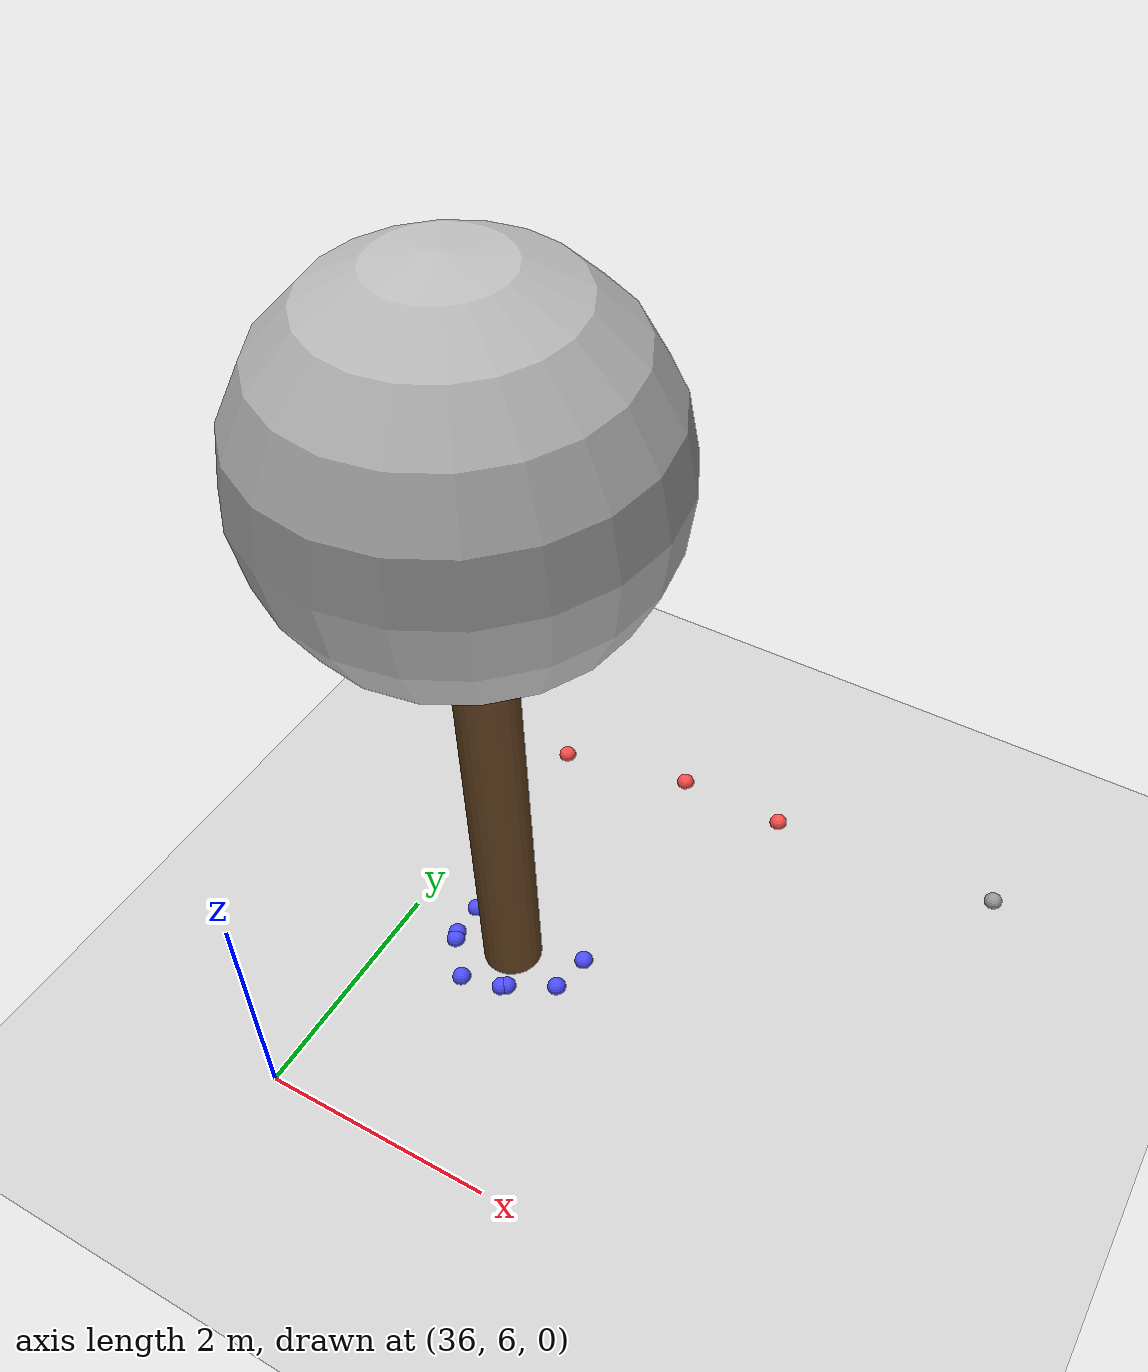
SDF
<sdf version="1.7">
 <world name="default">
  <model name="ground_plane">
   <static>1</static>
   <link name="link">
    <collision name="collision">
     <geometry><plane><normal>0 0 1</normal><size>100 100</size></plane></geometry>
     <surface>
      <contact><collide_bitmask>65535</collide_bitmask></contact>
      <friction><ode><mu>100</mu><mu2>50</mu2></ode></friction>
     </surface>
    </collision>
    <visual name="visual">
     <cast_shadows>0</cast_shadows>
     <geometry><plane><normal>0 0 1</normal><size>100 100</size></plane></geometry>
     <material>
      <script><uri>file://media/materials/scripts/gazebo.material</uri><name>Gazebo/Grey</name></script>
     </material>
    </visual>
   </link>
  </model>
  <model name="tree_simple_76">
   <static>1</static>
   <link name="link">
    <pose>0 0 0.1 0 -0 0</pose>
    <inertial>
     <mass>666</mass>
     <inertia>
      <ixx>0.0861167</ixx>
      <ixy>0</ixy>
      <ixz>0</ixz>
      <iyy>0.0861167</iyy>
      <iyz>0</iyz>
      <izz>0.0861167</izz>
     </inertia>
    </inertial>
    <collision name="collision_trunk">
     <pose>0 0 2 0 -0 0</pose>
     <geometry><cylinder><radius>0.25</radius><length>4</length></cylinder></geometry>
     <surface>
      <contact>
       <poissons_ratio>0.347</poissons_ratio>
       <elastic_modulus>8.8e+09</elastic_modulus>
       <ode><kp>100000</kp><kd>100</kd><max_vel>100</max_vel><min_depth>0.001</min_depth></ode>
      </contact>
      <friction>
       <torsional>
        <coefficient>1</coefficient>
        <use_patch_radius>0</use_patch_radius>
        <surface_radius>0.01</surface_radius>
       </torsional>
      </friction>
     </surface>
    </collision>
    <collision name="collision_treetop">
     <pose>0 0 5.2 0 -0 0</pose>
     <geometry><sphere><radius>1.5</radius></sphere></geometry>
     <surface>
      <contact>
       <poissons_ratio>0.347</poissons_ratio>
       <elastic_modulus>8.8e+09</elastic_modulus>
       <ode><kp>100000</kp><kd>100</kd><max_vel>100</max_vel><min_depth>0.001</min_depth></ode>
      </contact>
      <friction>
       <torsional>
        <coefficient>1</coefficient>
        <use_patch_radius>0</use_patch_radius>
        <surface_radius>0.01</surface_radius>
       </torsional>
      </friction>
     </surface>
    </collision>
    <visual name="trunk">
     <pose>0 0 2 0 -0 0</pose>
     <geometry><cylinder><radius>0.25</radius><length>4</length></cylinder></geometry>
     <material>
      <script>
       <uri>model://tree_simple/scripts</uri>
       <uri>model://tree_simple/materials/textures</uri>
       <name>TreeSimple/Trunk</name>
      </script>
     </material>
    </visual>
    <visual name="treetop">
     <pose>0 0 5.2 0 -0 0</pose>
     <geometry><sphere><radius>1.5</radius></sphere></geometry>
     <material>
      <script>
       <uri>model://tree_simple/scripts</uri>
       <uri>model://tree_simple/materials/textures</uri>
       <name>TreeSimple/Treetop</name>
      </script>
     </material>
    </visual>
   </link>
   <pose>37 8 -0.1 0 -0 0</pose>
  </model>
  <model name="seed_red_276">
   <link name="link">
    <inertial>
     <mass>1</mass>
     <inertia><ixx>0.1</ixx><ixy>0</ixy><ixz>0</ixz><iyy>0.1</iyy><iyz>0</iyz><izz>0.1</izz></inertia>
    </inertial>
    <visual name="visual">
     <geometry><sphere><radius>0.08</radius></sphere></geometry>
     <material>
      <script><name>Gazebo/Grey</name><uri>file://media/materials/scripts/gazebo.material</uri></script>
      <shader type="pixel"><normal_map>__default__</normal_map></shader>
      <ambient>1 0.3 0.3 1</ambient>
      <diffuse>0.7 0.7 0.7 1</diffuse>
      <specular>0.01 0.01 0.01 1</specular>
      <emissive>0 0 0 1</emissive>
     </material>
    </visual>
    <collision name="collision">
     <geometry><sphere><radius>0.0005</radius></sphere></geometry>
     <surface>
      <friction>
       <ode><mu>1</mu><mu2>1</mu2><fdir1>0 0 0</fdir1><slip1>0</slip1><slip2>0</slip2></ode>
       <torsional>
        <coefficient>1</coefficient>
        <patch_radius>0</patch_radius>
        <surface_radius>0</surface_radius>
        <use_patch_radius>1</use_patch_radius>
        <ode><slip>0</slip></ode>
       </torsional>
      </friction>
      <bounce><restitution_coefficient>0</restitution_coefficient><threshold>1e+06</threshold></bounce>
      <contact>
       <collide_without_contact>0</collide_without_contact>
       <collide_without_contact_bitmask>1</collide_without_contact_bitmask>
       <collide_bitmask>1</collide_bitmask>
       <ode>
        <soft_cfm>0</soft_cfm>
        <soft_erp>0.2</soft_erp>
        <kp>1e+13</kp>
        <kd>1</kd>
        <max_vel>0.01</max_vel>
        <min_depth>0</min_depth>
       </ode>
       <bullet>
        <split_impulse>1</split_impulse>
        <split_impulse_penetration_threshold>-0.01</split_impulse_penetration_threshold>
        <soft_cfm>0</soft_cfm>
        <soft_erp>0.2</soft_erp>
        <kp>1e+13</kp>
        <kd>1</kd>
       </bullet>
      </contact>
     </surface>
    </collision>
   </link>
   <static>0</static>
   <pose>36.2215 10.1786 0.0005 0 -0 0</pose>
  </model>
  <model name="seed_red_286">
   <link name="link">
    <inertial>
     <mass>1</mass>
     <inertia><ixx>0.1</ixx><ixy>0</ixy><ixz>0</ixz><iyy>0.1</iyy><iyz>0</iyz><izz>0.1</izz></inertia>
    </inertial>
    <visual name="visual">
     <geometry><sphere><radius>0.08</radius></sphere></geometry>
     <material>
      <script><name>Gazebo/Grey</name><uri>file://media/materials/scripts/gazebo.material</uri></script>
      <shader type="pixel"><normal_map>__default__</normal_map></shader>
      <ambient>1 0.3 0.3 1</ambient>
      <diffuse>0.7 0.7 0.7 1</diffuse>
      <specular>0.01 0.01 0.01 1</specular>
      <emissive>0 0 0 1</emissive>
     </material>
    </visual>
    <collision name="collision">
     <geometry><sphere><radius>0.0005</radius></sphere></geometry>
     <surface>
      <friction>
       <ode><mu>1</mu><mu2>1</mu2><fdir1>0 0 0</fdir1><slip1>0</slip1><slip2>0</slip2></ode>
       <torsional>
        <coefficient>1</coefficient>
        <patch_radius>0</patch_radius>
        <surface_radius>0</surface_radius>
        <use_patch_radius>1</use_patch_radius>
        <ode><slip>0</slip></ode>
       </torsional>
      </friction>
      <bounce><restitution_coefficient>0</restitution_coefficient><threshold>1e+06</threshold></bounce>
      <contact>
       <collide_without_contact>0</collide_without_contact>
       <collide_without_contact_bitmask>1</collide_without_contact_bitmask>
       <collide_bitmask>1</collide_bitmask>
       <ode>
        <soft_cfm>0</soft_cfm>
        <soft_erp>0.2</soft_erp>
        <kp>1e+13</kp>
        <kd>1</kd>
        <max_vel>0.01</max_vel>
        <min_depth>0</min_depth>
       </ode>
       <bullet>
        <split_impulse>1</split_impulse>
        <split_impulse_penetration_threshold>-0.01</split_impulse_penetration_threshold>
        <soft_cfm>0</soft_cfm>
        <soft_erp>0.2</soft_erp>
        <kp>1e+13</kp>
        <kd>1</kd>
       </bullet>
      </contact>
     </surface>
    </collision>
   </link>
   <static>0</static>
   <pose>37.3859 10.4287 0.0005 0 -0 0</pose>
  </model>
  <model name="seed_red_287">
   <link name="link">
    <inertial>
     <mass>1</mass>
     <inertia><ixx>0.1</ixx><ixy>0</ixy><ixz>0</ixz><iyy>0.1</iyy><iyz>0</iyz><izz>0.1</izz></inertia>
    </inertial>
    <visual name="visual">
     <geometry><sphere><radius>0.08</radius></sphere></geometry>
     <material>
      <script><name>Gazebo/Grey</name><uri>file://media/materials/scripts/gazebo.material</uri></script>
      <shader type="pixel"><normal_map>__default__</normal_map></shader>
      <ambient>1 0.3 0.3 1</ambient>
      <diffuse>0.7 0.7 0.7 1</diffuse>
      <specular>0.01 0.01 0.01 1</specular>
      <emissive>0 0 0 1</emissive>
     </material>
    </visual>
    <collision name="collision">
     <geometry><sphere><radius>0.0005</radius></sphere></geometry>
     <surface>
      <friction>
       <ode><mu>1</mu><mu2>1</mu2><fdir1>0 0 0</fdir1><slip1>0</slip1><slip2>0</slip2></ode>
       <torsional>
        <coefficient>1</coefficient>
        <patch_radius>0</patch_radius>
        <surface_radius>0</surface_radius>
        <use_patch_radius>1</use_patch_radius>
        <ode><slip>0</slip></ode>
       </torsional>
      </friction>
      <bounce><restitution_coefficient>0</restitution_coefficient><threshold>1e+06</threshold></bounce>
      <contact>
       <collide_without_contact>0</collide_without_contact>
       <collide_without_contact_bitmask>1</collide_without_contact_bitmask>
       <collide_bitmask>1</collide_bitmask>
       <ode>
        <soft_cfm>0</soft_cfm>
        <soft_erp>0.2</soft_erp>
        <kp>1e+13</kp>
        <kd>1</kd>
        <max_vel>0.01</max_vel>
        <min_depth>0</min_depth>
       </ode>
       <bullet>
        <split_impulse>1</split_impulse>
        <split_impulse_penetration_threshold>-0.01</split_impulse_penetration_threshold>
        <soft_cfm>0</soft_cfm>
        <soft_erp>0.2</soft_erp>
        <kp>1e+13</kp>
        <kd>1</kd>
       </bullet>
      </contact>
     </surface>
    </collision>
   </link>
   <static>0</static>
   <pose>38.374 10.4165 0.0005 0 -0 0</pose>
  </model>
  <model name="seed_black_54">
   <link name="link">
    <inertial>
     <mass>1</mass>
     <inertia><ixx>0.1</ixx><ixy>0</ixy><ixz>0</ixz><iyy>0.1</iyy><iyz>0</iyz><izz>0.1</izz></inertia>
    </inertial>
    <visual name="visual">
     <geometry><sphere><radius>0.08</radius></sphere></geometry>
     <material>
      <script><name>Gazebo/Grey</name><uri>file://media/materials/scripts/gazebo.material</uri></script>
      <shader type="pixel"><normal_map>__default__</normal_map></shader>
      <ambient>0 0 0 1</ambient>
      <diffuse>0.7 0.7 0.7 1</diffuse>
      <specular>0.01 0.01 0.01 1</specular>
      <emissive>0 0 0 1</emissive>
     </material>
    </visual>
    <collision name="collision">
     <geometry><sphere><radius>0.0005</radius></sphere></geometry>
     <surface>
      <friction>
       <ode><mu>1</mu><mu2>1</mu2><fdir1>0 0 0</fdir1><slip1>0</slip1><slip2>0</slip2></ode>
       <torsional>
        <coefficient>1</coefficient>
        <patch_radius>0</patch_radius>
        <surface_radius>0</surface_radius>
        <use_patch_radius>1</use_patch_radius>
        <ode><slip>0</slip></ode>
       </torsional>
      </friction>
      <bounce><restitution_coefficient>0</restitution_coefficient><threshold>1e+06</threshold></bounce>
      <contact>
       <collide_without_contact>0</collide_without_contact>
       <collide_without_contact_bitmask>1</collide_without_contact_bitmask>
       <collide_bitmask>1</collide_bitmask>
       <ode>
        <soft_cfm>0</soft_cfm>
        <soft_erp>0.2</soft_erp>
        <kp>1e+13</kp>
        <kd>1</kd>
        <max_vel>0.01</max_vel>
        <min_depth>0</min_depth>
       </ode>
       <bullet>
        <split_impulse>1</split_impulse>
        <split_impulse_penetration_threshold>-0.01</split_impulse_penetration_threshold>
        <soft_cfm>0</soft_cfm>
        <soft_erp>0.2</soft_erp>
        <kp>1e+13</kp>
        <kd>1</kd>
       </bullet>
      </contact>
     </surface>
    </collision>
   </link>
   <static>0</static>
   <pose>40.4393 10.538 0.0005 0 -0 0</pose>
  </model>
  <model name="seed_blue_155">
   <link name="link">
    <inertial>
     <mass>1</mass>
     <inertia><ixx>0.1</ixx><ixy>0</ixy><ixz>0</ixz><iyy>0.1</iyy><iyz>0</iyz><izz>0.1</izz></inertia>
    </inertial>
    <visual name="visual">
     <geometry><sphere><radius>0.08</radius></sphere></geometry>
     <material>
      <script><name>Gazebo/Grey</name><uri>file://media/materials/scripts/gazebo.material</uri></script>
      <shader type="pixel"><normal_map>__default__</normal_map></shader>
      <ambient>0.3 0.3 1 1</ambient>
      <diffuse>0.7 0.7 0.7 1</diffuse>
      <specular>0.01 0.01 0.01 1</specular>
      <emissive>0 0 0 1</emissive>
     </material>
    </visual>
    <collision name="collision">
     <geometry><sphere><radius>0.0005</radius></sphere></geometry>
     <surface>
      <friction>
       <ode><mu>1</mu><mu2>1</mu2><fdir1>0 0 0</fdir1><slip1>0</slip1><slip2>0</slip2></ode>
       <torsional>
        <coefficient>1</coefficient>
        <patch_radius>0</patch_radius>
        <surface_radius>0</surface_radius>
        <use_patch_radius>1</use_patch_radius>
        <ode><slip>0</slip></ode>
       </torsional>
      </friction>
      <bounce><restitution_coefficient>0</restitution_coefficient><threshold>1e+06</threshold></bounce>
      <contact>
       <collide_without_contact>0</collide_without_contact>
       <collide_without_contact_bitmask>1</collide_without_contact_bitmask>
       <collide_bitmask>1</collide_bitmask>
       <ode>
        <soft_cfm>0</soft_cfm>
        <soft_erp>0.2</soft_erp>
        <kp>1e+13</kp>
        <kd>1</kd>
        <max_vel>0.01</max_vel>
        <min_depth>0</min_depth>
       </ode>
       <bullet>
        <split_impulse>1</split_impulse>
        <split_impulse_penetration_threshold>-0.01</split_impulse_penetration_threshold>
        <soft_cfm>0</soft_cfm>
        <soft_erp>0.2</soft_erp>
        <kp>1e+13</kp>
        <kd>1</kd>
       </bullet>
      </contact>
     </surface>
    </collision>
   </link>
   <static>0</static>
   <pose>36.7647 7.55464 0.0005 0 -0 0</pose>
  </model>
  <model name="seed_blue_156">
   <link name="link">
    <inertial>
     <mass>1</mass>
     <inertia><ixx>0.1</ixx><ixy>0</ixy><ixz>0</ixz><iyy>0.1</iyy><iyz>0</iyz><izz>0.1</izz></inertia>
    </inertial>
    <visual name="visual">
     <geometry><sphere><radius>0.08</radius></sphere></geometry>
     <material>
      <script><name>Gazebo/Grey</name><uri>file://media/materials/scripts/gazebo.material</uri></script>
      <shader type="pixel"><normal_map>__default__</normal_map></shader>
      <ambient>0.3 0.3 1 1</ambient>
      <diffuse>0.7 0.7 0.7 1</diffuse>
      <specular>0.01 0.01 0.01 1</specular>
      <emissive>0 0 0 1</emissive>
     </material>
    </visual>
    <collision name="collision">
     <geometry><sphere><radius>0.0005</radius></sphere></geometry>
     <surface>
      <friction>
       <ode><mu>1</mu><mu2>1</mu2><fdir1>0 0 0</fdir1><slip1>0</slip1><slip2>0</slip2></ode>
       <torsional>
        <coefficient>1</coefficient>
        <patch_radius>0</patch_radius>
        <surface_radius>0</surface_radius>
        <use_patch_radius>1</use_patch_radius>
        <ode><slip>0</slip></ode>
       </torsional>
      </friction>
      <bounce><restitution_coefficient>0</restitution_coefficient><threshold>1e+06</threshold></bounce>
      <contact>
       <collide_without_contact>0</collide_without_contact>
       <collide_without_contact_bitmask>1</collide_without_contact_bitmask>
       <collide_bitmask>1</collide_bitmask>
       <ode>
        <soft_cfm>0</soft_cfm>
        <soft_erp>0.2</soft_erp>
        <kp>1e+13</kp>
        <kd>1</kd>
        <max_vel>0.01</max_vel>
        <min_depth>0</min_depth>
       </ode>
       <bullet>
        <split_impulse>1</split_impulse>
        <split_impulse_penetration_threshold>-0.01</split_impulse_penetration_threshold>
        <soft_cfm>0</soft_cfm>
        <soft_erp>0.2</soft_erp>
        <kp>1e+13</kp>
        <kd>1</kd>
       </bullet>
      </contact>
     </surface>
    </collision>
   </link>
   <static>0</static>
   <pose>37.5888 8.20765 0.0005 0 -0 0</pose>
  </model>
  <model name="seed_blue_157">
   <link name="link">
    <inertial>
     <mass>1</mass>
     <inertia><ixx>0.1</ixx><ixy>0</ixy><ixz>0</ixz><iyy>0.1</iyy><iyz>0</iyz><izz>0.1</izz></inertia>
    </inertial>
    <visual name="visual">
     <geometry><sphere><radius>0.08</radius></sphere></geometry>
     <material>
      <script><name>Gazebo/Grey</name><uri>file://media/materials/scripts/gazebo.material</uri></script>
      <shader type="pixel"><normal_map>__default__</normal_map></shader>
      <ambient>0.3 0.3 1 1</ambient>
      <diffuse>0.7 0.7 0.7 1</diffuse>
      <specular>0.01 0.01 0.01 1</specular>
      <emissive>0 0 0 1</emissive>
     </material>
    </visual>
    <collision name="collision">
     <geometry><sphere><radius>0.0005</radius></sphere></geometry>
     <surface>
      <friction>
       <ode><mu>1</mu><mu2>1</mu2><fdir1>0 0 0</fdir1><slip1>0</slip1><slip2>0</slip2></ode>
       <torsional>
        <coefficient>1</coefficient>
        <patch_radius>0</patch_radius>
        <surface_radius>0</surface_radius>
        <use_patch_radius>1</use_patch_radius>
        <ode><slip>0</slip></ode>
       </torsional>
      </friction>
      <bounce><restitution_coefficient>0</restitution_coefficient><threshold>1e+06</threshold></bounce>
      <contact>
       <collide_without_contact>0</collide_without_contact>
       <collide_without_contact_bitmask>1</collide_without_contact_bitmask>
       <collide_bitmask>1</collide_bitmask>
       <ode>
        <soft_cfm>0</soft_cfm>
        <soft_erp>0.2</soft_erp>
        <kp>1e+13</kp>
        <kd>1</kd>
        <max_vel>0.01</max_vel>
        <min_depth>0</min_depth>
       </ode>
       <bullet>
        <split_impulse>1</split_impulse>
        <split_impulse_penetration_threshold>-0.01</split_impulse_penetration_threshold>
        <soft_cfm>0</soft_cfm>
        <soft_erp>0.2</soft_erp>
        <kp>1e+13</kp>
        <kd>1</kd>
       </bullet>
      </contact>
     </surface>
    </collision>
   </link>
   <static>0</static>
   <pose>37.1528 7.66377 0.0005 0 -0 0</pose>
  </model>
  <model name="seed_blue_158">
   <link name="link">
    <inertial>
     <mass>1</mass>
     <inertia><ixx>0.1</ixx><ixy>0</ixy><ixz>0</ixz><iyy>0.1</iyy><iyz>0</iyz><izz>0.1</izz></inertia>
    </inertial>
    <visual name="visual">
     <geometry><sphere><radius>0.08</radius></sphere></geometry>
     <material>
      <script><name>Gazebo/Grey</name><uri>file://media/materials/scripts/gazebo.material</uri></script>
      <shader type="pixel"><normal_map>__default__</normal_map></shader>
      <ambient>0.3 0.3 1 1</ambient>
      <diffuse>0.7 0.7 0.7 1</diffuse>
      <specular>0.01 0.01 0.01 1</specular>
      <emissive>0 0 0 1</emissive>
     </material>
    </visual>
    <collision name="collision">
     <geometry><sphere><radius>0.0005</radius></sphere></geometry>
     <surface>
      <friction>
       <ode><mu>1</mu><mu2>1</mu2><fdir1>0 0 0</fdir1><slip1>0</slip1><slip2>0</slip2></ode>
       <torsional>
        <coefficient>1</coefficient>
        <patch_radius>0</patch_radius>
        <surface_radius>0</surface_radius>
        <use_patch_radius>1</use_patch_radius>
        <ode><slip>0</slip></ode>
       </torsional>
      </friction>
      <bounce><restitution_coefficient>0</restitution_coefficient><threshold>1e+06</threshold></bounce>
      <contact>
       <collide_without_contact>0</collide_without_contact>
       <collide_without_contact_bitmask>1</collide_without_contact_bitmask>
       <collide_bitmask>1</collide_bitmask>
       <ode>
        <soft_cfm>0</soft_cfm>
        <soft_erp>0.2</soft_erp>
        <kp>1e+13</kp>
        <kd>1</kd>
        <max_vel>0.01</max_vel>
        <min_depth>0</min_depth>
       </ode>
       <bullet>
        <split_impulse>1</split_impulse>
        <split_impulse_penetration_threshold>-0.01</split_impulse_penetration_threshold>
        <soft_cfm>0</soft_cfm>
        <soft_erp>0.2</soft_erp>
        <kp>1e+13</kp>
        <kd>1</kd>
       </bullet>
      </contact>
     </surface>
    </collision>
   </link>
   <static>0</static>
   <pose>36.4742 8.21951 0.0005 0 -0 0</pose>
  </model>
  <model name="seed_blue_159">
   <link name="link">
    <inertial>
     <mass>1</mass>
     <inertia><ixx>0.1</ixx><ixy>0</ixy><ixz>0</ixz><iyy>0.1</iyy><iyz>0</iyz><izz>0.1</izz></inertia>
    </inertial>
    <visual name="visual">
     <geometry><sphere><radius>0.08</radius></sphere></geometry>
     <material>
      <script><name>Gazebo/Grey</name><uri>file://media/materials/scripts/gazebo.material</uri></script>
      <shader type="pixel"><normal_map>__default__</normal_map></shader>
      <ambient>0.3 0.3 1 1</ambient>
      <diffuse>0.7 0.7 0.7 1</diffuse>
      <specular>0.01 0.01 0.01 1</specular>
      <emissive>0 0 0 1</emissive>
     </material>
    </visual>
    <collision name="collision">
     <geometry><sphere><radius>0.0005</radius></sphere></geometry>
     <surface>
      <friction>
       <ode><mu>1</mu><mu2>1</mu2><fdir1>0 0 0</fdir1><slip1>0</slip1><slip2>0</slip2></ode>
       <torsional>
        <coefficient>1</coefficient>
        <patch_radius>0</patch_radius>
        <surface_radius>0</surface_radius>
        <use_patch_radius>1</use_patch_radius>
        <ode><slip>0</slip></ode>
       </torsional>
      </friction>
      <bounce><restitution_coefficient>0</restitution_coefficient><threshold>1e+06</threshold></bounce>
      <contact>
       <collide_without_contact>0</collide_without_contact>
       <collide_without_contact_bitmask>1</collide_without_contact_bitmask>
       <collide_bitmask>1</collide_bitmask>
       <ode>
        <soft_cfm>0</soft_cfm>
        <soft_erp>0.2</soft_erp>
        <kp>1e+13</kp>
        <kd>1</kd>
        <max_vel>0.01</max_vel>
        <min_depth>0</min_depth>
       </ode>
       <bullet>
        <split_impulse>1</split_impulse>
        <split_impulse_penetration_threshold>-0.01</split_impulse_penetration_threshold>
        <soft_cfm>0</soft_cfm>
        <soft_erp>0.2</soft_erp>
        <kp>1e+13</kp>
        <kd>1</kd>
       </bullet>
      </contact>
     </surface>
    </collision>
   </link>
   <static>0</static>
   <pose>37.525 7.86731 0.0005 0 -0 0</pose>
  </model>
  <model name="seed_blue_160">
   <link name="link">
    <inertial>
     <mass>1</mass>
     <inertia><ixx>0.1</ixx><ixy>0</ixy><ixz>0</ixz><iyy>0.1</iyy><iyz>0</iyz><izz>0.1</izz></inertia>
    </inertial>
    <visual name="visual">
     <geometry><sphere><radius>0.08</radius></sphere></geometry>
     <material>
      <script><name>Gazebo/Grey</name><uri>file://media/materials/scripts/gazebo.material</uri></script>
      <shader type="pixel"><normal_map>__default__</normal_map></shader>
      <ambient>0.3 0.3 1 1</ambient>
      <diffuse>0.7 0.7 0.7 1</diffuse>
      <specular>0.01 0.01 0.01 1</specular>
      <emissive>0 0 0 1</emissive>
     </material>
    </visual>
    <collision name="collision">
     <geometry><sphere><radius>0.0005</radius></sphere></geometry>
     <surface>
      <friction>
       <ode><mu>1</mu><mu2>1</mu2><fdir1>0 0 0</fdir1><slip1>0</slip1><slip2>0</slip2></ode>
       <torsional>
        <coefficient>1</coefficient>
        <patch_radius>0</patch_radius>
        <surface_radius>0</surface_radius>
        <use_patch_radius>1</use_patch_radius>
        <ode><slip>0</slip></ode>
       </torsional>
      </friction>
      <bounce><restitution_coefficient>0</restitution_coefficient><threshold>1e+06</threshold></bounce>
      <contact>
       <collide_without_contact>0</collide_without_contact>
       <collide_without_contact_bitmask>1</collide_without_contact_bitmask>
       <collide_bitmask>1</collide_bitmask>
       <ode>
        <soft_cfm>0</soft_cfm>
        <soft_erp>0.2</soft_erp>
        <kp>1e+13</kp>
        <kd>1</kd>
        <max_vel>0.01</max_vel>
        <min_depth>0</min_depth>
       </ode>
       <bullet>
        <split_impulse>1</split_impulse>
        <split_impulse_penetration_threshold>-0.01</split_impulse_penetration_threshold>
        <soft_cfm>0</soft_cfm>
        <soft_erp>0.2</soft_erp>
        <kp>1e+13</kp>
        <kd>1</kd>
       </bullet>
      </contact>
     </surface>
    </collision>
   </link>
   <static>0</static>
   <pose>37.1129 7.63506 0.0005 0 -0 0</pose>
  </model>
  <model name="seed_blue_161">
   <link name="link">
    <inertial>
     <mass>1</mass>
     <inertia><ixx>0.1</ixx><ixy>0</ixy><ixz>0</ixz><iyy>0.1</iyy><iyz>0</iyz><izz>0.1</izz></inertia>
    </inertial>
    <visual name="visual">
     <geometry><sphere><radius>0.08</radius></sphere></geometry>
     <material>
      <script><name>Gazebo/Grey</name><uri>file://media/materials/scripts/gazebo.material</uri></script>
      <shader type="pixel"><normal_map>__default__</normal_map></shader>
      <ambient>0.3 0.3 1 1</ambient>
      <diffuse>0.7 0.7 0.7 1</diffuse>
      <specular>0.01 0.01 0.01 1</specular>
      <emissive>0 0 0 1</emissive>
     </material>
    </visual>
    <collision name="collision">
     <geometry><sphere><radius>0.0005</radius></sphere></geometry>
     <surface>
      <friction>
       <ode><mu>1</mu><mu2>1</mu2><fdir1>0 0 0</fdir1><slip1>0</slip1><slip2>0</slip2></ode>
       <torsional>
        <coefficient>1</coefficient>
        <patch_radius>0</patch_radius>
        <surface_radius>0</surface_radius>
        <use_patch_radius>1</use_patch_radius>
        <ode><slip>0</slip></ode>
       </torsional>
      </friction>
      <bounce><restitution_coefficient>0</restitution_coefficient><threshold>1e+06</threshold></bounce>
      <contact>
       <collide_without_contact>0</collide_without_contact>
       <collide_without_contact_bitmask>1</collide_without_contact_bitmask>
       <collide_bitmask>1</collide_bitmask>
       <ode>
        <soft_cfm>0</soft_cfm>
        <soft_erp>0.2</soft_erp>
        <kp>1e+13</kp>
        <kd>1</kd>
        <max_vel>0.01</max_vel>
        <min_depth>0</min_depth>
       </ode>
       <bullet>
        <split_impulse>1</split_impulse>
        <split_impulse_penetration_threshold>-0.01</split_impulse_penetration_threshold>
        <soft_cfm>0</soft_cfm>
        <soft_erp>0.2</soft_erp>
        <kp>1e+13</kp>
        <kd>1</kd>
       </bullet>
      </contact>
     </surface>
    </collision>
   </link>
   <static>0</static>
   <pose>36.502 7.85379 0.0005 0 -0 0</pose>
  </model>
  <model name="seed_blue_162">
   <link name="link">
    <inertial>
     <mass>1</mass>
     <inertia><ixx>0.1</ixx><ixy>0</ixy><ixz>0</ixz><iyy>0.1</iyy><iyz>0</iyz><izz>0.1</izz></inertia>
    </inertial>
    <visual name="visual">
     <geometry><sphere><radius>0.08</radius></sphere></geometry>
     <material>
      <script><name>Gazebo/Grey</name><uri>file://media/materials/scripts/gazebo.material</uri></script>
      <shader type="pixel"><normal_map>__default__</normal_map></shader>
      <ambient>0.3 0.3 1 1</ambient>
      <diffuse>0.7 0.7 0.7 1</diffuse>
      <specular>0.01 0.01 0.01 1</specular>
      <emissive>0 0 0 1</emissive>
     </material>
    </visual>
    <collision name="collision">
     <geometry><sphere><radius>0.0005</radius></sphere></geometry>
     <surface>
      <friction>
       <ode><mu>1</mu><mu2>1</mu2><fdir1>0 0 0</fdir1><slip1>0</slip1><slip2>0</slip2></ode>
       <torsional>
        <coefficient>1</coefficient>
        <patch_radius>0</patch_radius>
        <surface_radius>0</surface_radius>
        <use_patch_radius>1</use_patch_radius>
        <ode><slip>0</slip></ode>
       </torsional>
      </friction>
      <bounce><restitution_coefficient>0</restitution_coefficient><threshold>1e+06</threshold></bounce>
      <contact>
       <collide_without_contact>0</collide_without_contact>
       <collide_without_contact_bitmask>1</collide_without_contact_bitmask>
       <collide_bitmask>1</collide_bitmask>
       <ode>
        <soft_cfm>0</soft_cfm>
        <soft_erp>0.2</soft_erp>
        <kp>1e+13</kp>
        <kd>1</kd>
        <max_vel>0.01</max_vel>
        <min_depth>0</min_depth>
       </ode>
       <bullet>
        <split_impulse>1</split_impulse>
        <split_impulse_penetration_threshold>-0.01</split_impulse_penetration_threshold>
        <soft_cfm>0</soft_cfm>
        <soft_erp>0.2</soft_erp>
        <kp>1e+13</kp>
        <kd>1</kd>
       </bullet>
      </contact>
     </surface>
    </collision>
   </link>
   <static>0</static>
   <pose>36.4752 7.91461 0.0005 0 -0 0</pose>
  </model>
 </world>
</sdf>
